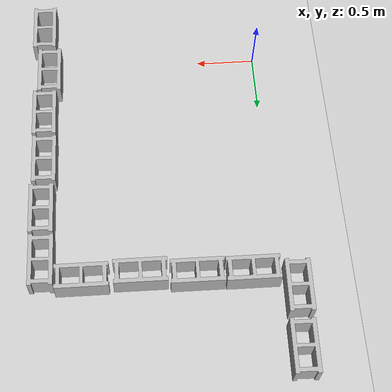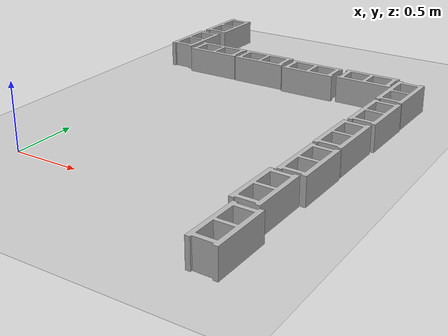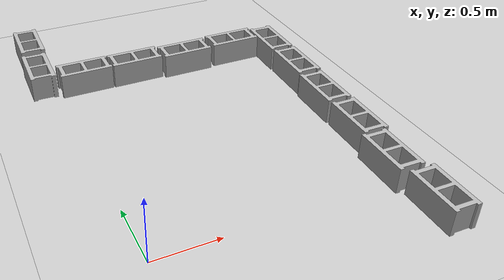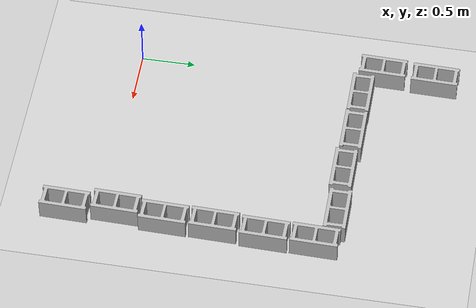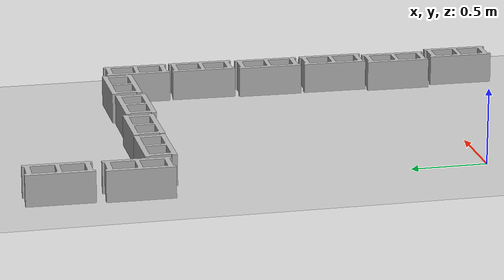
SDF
<sdf version="1.6">
 <world name="default">
  <model name="ground_plane">
   <static>1</static>
   <link name="link">
    <collision name="collision">
     <geometry><plane><normal>0 0 1</normal><size>100 100</size></plane></geometry>
     <surface>
      <contact><collide_bitmask>65535</collide_bitmask></contact>
      <friction><ode><mu>100</mu><mu2>50</mu2></ode></friction>
     </surface>
    </collision>
    <visual name="visual">
     <cast_shadows>0</cast_shadows>
     <geometry><plane><normal>0 0 1</normal><size>100 100</size></plane></geometry>
     <material>
      <script><uri>file://media/materials/scripts/gazebo.material</uri><name>Gazebo/Grey</name></script>
     </material>
    </visual>
   </link>
  </model>
  <model name="cinder_block">
   <link name="link">
    <inertial>
     <pose>0 0 0.1016 0 -0 0</pose>
     <mass>5</mass>
     <inertia>
      <ixx>0.028705</ixx>
      <ixy>0</ixy>
      <iyy>0.073708</iyy>
      <ixz>0</ixz>
      <iyz>0</iyz>
      <izz>0.06908</izz>
     </inertia>
    </inertial>
    <visual name="visual">
     <geometry><mesh><uri>model://cinder_block/meshes/cinder_block.dae</uri></mesh></geometry>
    </visual>
    <collision name="left">
     <pose>0 -0.08465 0.1016 0 -0 0</pose>
     <geometry><box><size>0.43495 0.0339 0.2032</size></box></geometry>
     <surface>
      <contact><ode><max_vel>0.1</max_vel><min_depth>0.001</min_depth></ode></contact>
      <friction><ode><mu>1</mu><mu2>1</mu2></ode></friction>
     </surface>
    </collision>
    <collision name="right">
     <pose>0 0.08465 0.1016 0 -0 0</pose>
     <geometry><box><size>0.43495 0.0339 0.2032</size></box></geometry>
     <surface>
      <contact><ode><max_vel>0.1</max_vel><min_depth>0.001</min_depth></ode></contact>
      <friction><ode><mu>1</mu><mu2>1</mu2></ode></friction>
     </surface>
    </collision>
    <collision name="front">
     <pose>0.18625 0 0.1016 0 -0 0</pose>
     <geometry><box><size>0.0339 0.1354 0.203</size></box></geometry>
     <surface>
      <contact><ode><max_vel>0.1</max_vel><min_depth>0.001</min_depth></ode></contact>
      <friction><ode><mu>1</mu><mu2>1</mu2></ode></friction>
     </surface>
    </collision>
    <collision name="middle">
     <pose>0 0 0.1016 0 -0 0</pose>
     <geometry><box><size>0.0339 0.1354 0.203</size></box></geometry>
     <surface>
      <contact><ode><max_vel>0.1</max_vel><min_depth>0.001</min_depth></ode></contact>
      <friction><ode><mu>1</mu><mu2>1</mu2></ode></friction>
     </surface>
    </collision>
    <collision name="back">
     <pose>-0.18625 0 0.1016 0 -0 0</pose>
     <geometry><box><size>0.0339 0.1354 0.203</size></box></geometry>
     <surface>
      <contact><ode><max_vel>0.1</max_vel><min_depth>0.001</min_depth></ode></contact>
      <friction><ode><mu>1</mu><mu2>1</mu2></ode></friction>
     </surface>
    </collision>
   </link>
   <pose>0.224611 2.1058 -6e-06 -1e-06 2.9e-05 0</pose>
  </model>
  <model name="cinder_block_0">
   <link name="link">
    <inertial>
     <pose>0 0 0.1016 0 -0 0</pose>
     <mass>5</mass>
     <inertia>
      <ixx>0.028705</ixx>
      <ixy>0</ixy>
      <iyy>0.073708</iyy>
      <ixz>0</ixz>
      <iyz>0</iyz>
      <izz>0.06908</izz>
     </inertia>
    </inertial>
    <visual name="visual">
     <geometry><mesh><uri>model://cinder_block/meshes/cinder_block.dae</uri></mesh></geometry>
    </visual>
    <collision name="left">
     <pose>0 -0.08465 0.1016 0 -0 0</pose>
     <geometry><box><size>0.43495 0.0339 0.2032</size></box></geometry>
     <surface>
      <contact><ode><max_vel>0.1</max_vel><min_depth>0.001</min_depth></ode></contact>
      <friction><ode><mu>1</mu><mu2>1</mu2></ode></friction>
     </surface>
    </collision>
    <collision name="right">
     <pose>0 0.08465 0.1016 0 -0 0</pose>
     <geometry><box><size>0.43495 0.0339 0.2032</size></box></geometry>
     <surface>
      <contact><ode><max_vel>0.1</max_vel><min_depth>0.001</min_depth></ode></contact>
      <friction><ode><mu>1</mu><mu2>1</mu2></ode></friction>
     </surface>
    </collision>
    <collision name="front">
     <pose>0.18625 0 0.1016 0 -0 0</pose>
     <geometry><box><size>0.0339 0.1354 0.203</size></box></geometry>
     <surface>
      <contact><ode><max_vel>0.1</max_vel><min_depth>0.001</min_depth></ode></contact>
      <friction><ode><mu>1</mu><mu2>1</mu2></ode></friction>
     </surface>
    </collision>
    <collision name="middle">
     <pose>0 0 0.1016 0 -0 0</pose>
     <geometry><box><size>0.0339 0.1354 0.203</size></box></geometry>
     <surface>
      <contact><ode><max_vel>0.1</max_vel><min_depth>0.001</min_depth></ode></contact>
      <friction><ode><mu>1</mu><mu2>1</mu2></ode></friction>
     </surface>
    </collision>
    <collision name="back">
     <pose>-0.18625 0 0.1016 0 -0 0</pose>
     <geometry><box><size>0.0339 0.1354 0.203</size></box></geometry>
     <surface>
      <contact><ode><max_vel>0.1</max_vel><min_depth>0.001</min_depth></ode></contact>
      <friction><ode><mu>1</mu><mu2>1</mu2></ode></friction>
     </surface>
    </collision>
   </link>
   <pose>0.669416 2.10145 -6e-06 -1e-06 2.9e-05 0</pose>
  </model>
  <model name="cinder_block_1">
   <link name="link">
    <inertial>
     <pose>0 0 0.1016 0 -0 0</pose>
     <mass>5</mass>
     <inertia>
      <ixx>0.028705</ixx>
      <ixy>0</ixy>
      <iyy>0.073708</iyy>
      <ixz>0</ixz>
      <iyz>0</iyz>
      <izz>0.06908</izz>
     </inertia>
    </inertial>
    <visual name="visual">
     <geometry><mesh><uri>model://cinder_block/meshes/cinder_block.dae</uri></mesh></geometry>
    </visual>
    <collision name="left">
     <pose>0 -0.08465 0.1016 0 -0 0</pose>
     <geometry><box><size>0.43495 0.0339 0.2032</size></box></geometry>
     <surface>
      <contact><ode><max_vel>0.1</max_vel><min_depth>0.001</min_depth></ode></contact>
      <friction><ode><mu>1</mu><mu2>1</mu2></ode></friction>
     </surface>
    </collision>
    <collision name="right">
     <pose>0 0.08465 0.1016 0 -0 0</pose>
     <geometry><box><size>0.43495 0.0339 0.2032</size></box></geometry>
     <surface>
      <contact><ode><max_vel>0.1</max_vel><min_depth>0.001</min_depth></ode></contact>
      <friction><ode><mu>1</mu><mu2>1</mu2></ode></friction>
     </surface>
    </collision>
    <collision name="front">
     <pose>0.18625 0 0.1016 0 -0 0</pose>
     <geometry><box><size>0.0339 0.1354 0.203</size></box></geometry>
     <surface>
      <contact><ode><max_vel>0.1</max_vel><min_depth>0.001</min_depth></ode></contact>
      <friction><ode><mu>1</mu><mu2>1</mu2></ode></friction>
     </surface>
    </collision>
    <collision name="middle">
     <pose>0 0 0.1016 0 -0 0</pose>
     <geometry><box><size>0.0339 0.1354 0.203</size></box></geometry>
     <surface>
      <contact><ode><max_vel>0.1</max_vel><min_depth>0.001</min_depth></ode></contact>
      <friction><ode><mu>1</mu><mu2>1</mu2></ode></friction>
     </surface>
    </collision>
    <collision name="back">
     <pose>-0.18625 0 0.1016 0 -0 0</pose>
     <geometry><box><size>0.0339 0.1354 0.203</size></box></geometry>
     <surface>
      <contact><ode><max_vel>0.1</max_vel><min_depth>0.001</min_depth></ode></contact>
      <friction><ode><mu>1</mu><mu2>1</mu2></ode></friction>
     </surface>
    </collision>
   </link>
   <pose>1.12399 2.07563 -6e-06 -1e-06 2.9e-05 0</pose>
  </model>
  <model name="cinder_block_2">
   <link name="link">
    <inertial>
     <pose>0 0 0.1016 0 -0 0</pose>
     <mass>5</mass>
     <inertia>
      <ixx>0.028705</ixx>
      <ixy>0</ixy>
      <iyy>0.073708</iyy>
      <ixz>0</ixz>
      <iyz>0</iyz>
      <izz>0.06908</izz>
     </inertia>
    </inertial>
    <visual name="visual">
     <geometry><mesh><uri>model://cinder_block/meshes/cinder_block.dae</uri></mesh></geometry>
    </visual>
    <collision name="left">
     <pose>0 -0.08465 0.1016 0 -0 0</pose>
     <geometry><box><size>0.43495 0.0339 0.2032</size></box></geometry>
     <surface>
      <contact><ode><max_vel>0.1</max_vel><min_depth>0.001</min_depth></ode></contact>
      <friction><ode><mu>1</mu><mu2>1</mu2></ode></friction>
     </surface>
    </collision>
    <collision name="right">
     <pose>0 0.08465 0.1016 0 -0 0</pose>
     <geometry><box><size>0.43495 0.0339 0.2032</size></box></geometry>
     <surface>
      <contact><ode><max_vel>0.1</max_vel><min_depth>0.001</min_depth></ode></contact>
      <friction><ode><mu>1</mu><mu2>1</mu2></ode></friction>
     </surface>
    </collision>
    <collision name="front">
     <pose>0.18625 0 0.1016 0 -0 0</pose>
     <geometry><box><size>0.0339 0.1354 0.203</size></box></geometry>
     <surface>
      <contact><ode><max_vel>0.1</max_vel><min_depth>0.001</min_depth></ode></contact>
      <friction><ode><mu>1</mu><mu2>1</mu2></ode></friction>
     </surface>
    </collision>
    <collision name="middle">
     <pose>0 0 0.1016 0 -0 0</pose>
     <geometry><box><size>0.0339 0.1354 0.203</size></box></geometry>
     <surface>
      <contact><ode><max_vel>0.1</max_vel><min_depth>0.001</min_depth></ode></contact>
      <friction><ode><mu>1</mu><mu2>1</mu2></ode></friction>
     </surface>
    </collision>
    <collision name="back">
     <pose>-0.18625 0 0.1016 0 -0 0</pose>
     <geometry><box><size>0.0339 0.1354 0.203</size></box></geometry>
     <surface>
      <contact><ode><max_vel>0.1</max_vel><min_depth>0.001</min_depth></ode></contact>
      <friction><ode><mu>1</mu><mu2>1</mu2></ode></friction>
     </surface>
    </collision>
   </link>
   <pose>1.59289 2.09049 -6e-06 -1e-06 2.9e-05 0</pose>
  </model>
  <model name="cinder_block_2_clone">
   <link name="link">
    <inertial>
     <pose>0 0 0.1016 0 -0 0</pose>
     <mass>5</mass>
     <inertia>
      <ixx>0.028705</ixx>
      <ixy>0</ixy>
      <iyy>0.073708</iyy>
      <ixz>0</ixz>
      <iyz>0</iyz>
      <izz>0.06908</izz>
     </inertia>
    </inertial>
    <visual name="visual">
     <geometry><mesh><uri>model://cinder_block/meshes/cinder_block.dae</uri></mesh></geometry>
    </visual>
    <collision name="left">
     <pose>0 -0.08465 0.1016 0 -0 0</pose>
     <geometry><box><size>0.43495 0.0339 0.2032</size></box></geometry>
     <surface>
      <contact><ode><max_vel>0.1</max_vel><min_depth>0.001</min_depth></ode></contact>
      <friction><ode><mu>1</mu><mu2>1</mu2></ode></friction>
     </surface>
    </collision>
    <collision name="right">
     <pose>0 0.08465 0.1016 0 -0 0</pose>
     <geometry><box><size>0.43495 0.0339 0.2032</size></box></geometry>
     <surface>
      <contact><ode><max_vel>0.1</max_vel><min_depth>0.001</min_depth></ode></contact>
      <friction><ode><mu>1</mu><mu2>1</mu2></ode></friction>
     </surface>
    </collision>
    <collision name="front">
     <pose>0.18625 0 0.1016 0 -0 0</pose>
     <geometry><box><size>0.0339 0.1354 0.203</size></box></geometry>
     <surface>
      <contact><ode><max_vel>0.1</max_vel><min_depth>0.001</min_depth></ode></contact>
      <friction><ode><mu>1</mu><mu2>1</mu2></ode></friction>
     </surface>
    </collision>
    <collision name="middle">
     <pose>0 0 0.1016 0 -0 0</pose>
     <geometry><box><size>0.0339 0.1354 0.203</size></box></geometry>
     <surface>
      <contact><ode><max_vel>0.1</max_vel><min_depth>0.001</min_depth></ode></contact>
      <friction><ode><mu>1</mu><mu2>1</mu2></ode></friction>
     </surface>
    </collision>
    <collision name="back">
     <pose>-0.18625 0 0.1016 0 -0 0</pose>
     <geometry><box><size>0.0339 0.1354 0.203</size></box></geometry>
     <surface>
      <contact><ode><max_vel>0.1</max_vel><min_depth>0.001</min_depth></ode></contact>
      <friction><ode><mu>1</mu><mu2>1</mu2></ode></friction>
     </surface>
    </collision>
   </link>
   <pose>1.91534 1.93639 -1.2e-05 6e-06 -0 -1.59062</pose>
  </model>
  <model name="cinder_block_2_clone_clone">
   <link name="link">
    <inertial>
     <pose>0 0 0.1016 0 -0 0</pose>
     <mass>5</mass>
     <inertia>
      <ixx>0.028705</ixx>
      <ixy>0</ixy>
      <iyy>0.073708</iyy>
      <ixz>0</ixz>
      <iyz>0</iyz>
      <izz>0.06908</izz>
     </inertia>
    </inertial>
    <visual name="visual">
     <geometry><mesh><uri>model://cinder_block/meshes/cinder_block.dae</uri></mesh></geometry>
    </visual>
    <collision name="left">
     <pose>0 -0.08465 0.1016 0 -0 0</pose>
     <geometry><box><size>0.43495 0.0339 0.2032</size></box></geometry>
     <surface>
      <contact><ode><max_vel>0.1</max_vel><min_depth>0.001</min_depth></ode></contact>
      <friction><ode><mu>1</mu><mu2>1</mu2></ode></friction>
     </surface>
    </collision>
    <collision name="right">
     <pose>0 0.08465 0.1016 0 -0 0</pose>
     <geometry><box><size>0.43495 0.0339 0.2032</size></box></geometry>
     <surface>
      <contact><ode><max_vel>0.1</max_vel><min_depth>0.001</min_depth></ode></contact>
      <friction><ode><mu>1</mu><mu2>1</mu2></ode></friction>
     </surface>
    </collision>
    <collision name="front">
     <pose>0.18625 0 0.1016 0 -0 0</pose>
     <geometry><box><size>0.0339 0.1354 0.203</size></box></geometry>
     <surface>
      <contact><ode><max_vel>0.1</max_vel><min_depth>0.001</min_depth></ode></contact>
      <friction><ode><mu>1</mu><mu2>1</mu2></ode></friction>
     </surface>
    </collision>
    <collision name="middle">
     <pose>0 0 0.1016 0 -0 0</pose>
     <geometry><box><size>0.0339 0.1354 0.203</size></box></geometry>
     <surface>
      <contact><ode><max_vel>0.1</max_vel><min_depth>0.001</min_depth></ode></contact>
      <friction><ode><mu>1</mu><mu2>1</mu2></ode></friction>
     </surface>
    </collision>
    <collision name="back">
     <pose>-0.18625 0 0.1016 0 -0 0</pose>
     <geometry><box><size>0.0339 0.1354 0.203</size></box></geometry>
     <surface>
      <contact><ode><max_vel>0.1</max_vel><min_depth>0.001</min_depth></ode></contact>
      <friction><ode><mu>1</mu><mu2>1</mu2></ode></friction>
     </surface>
    </collision>
   </link>
   <pose>1.91173 1.47972 -1.2e-05 6e-06 -0 -1.59062</pose>
  </model>
  <model name="cinder_block_2_clone_clone_0">
   <link name="link">
    <inertial>
     <pose>0 0 0.1016 0 -0 0</pose>
     <mass>5</mass>
     <inertia>
      <ixx>0.028705</ixx>
      <ixy>0</ixy>
      <iyy>0.073708</iyy>
      <ixz>0</ixz>
      <iyz>0</iyz>
      <izz>0.06908</izz>
     </inertia>
    </inertial>
    <visual name="visual">
     <geometry><mesh><uri>model://cinder_block/meshes/cinder_block.dae</uri></mesh></geometry>
    </visual>
    <collision name="left">
     <pose>0 -0.08465 0.1016 0 -0 0</pose>
     <geometry><box><size>0.43495 0.0339 0.2032</size></box></geometry>
     <surface>
      <contact><ode><max_vel>0.1</max_vel><min_depth>0.001</min_depth></ode></contact>
      <friction><ode><mu>1</mu><mu2>1</mu2></ode></friction>
     </surface>
    </collision>
    <collision name="right">
     <pose>0 0.08465 0.1016 0 -0 0</pose>
     <geometry><box><size>0.43495 0.0339 0.2032</size></box></geometry>
     <surface>
      <contact><ode><max_vel>0.1</max_vel><min_depth>0.001</min_depth></ode></contact>
      <friction><ode><mu>1</mu><mu2>1</mu2></ode></friction>
     </surface>
    </collision>
    <collision name="front">
     <pose>0.18625 0 0.1016 0 -0 0</pose>
     <geometry><box><size>0.0339 0.1354 0.203</size></box></geometry>
     <surface>
      <contact><ode><max_vel>0.1</max_vel><min_depth>0.001</min_depth></ode></contact>
      <friction><ode><mu>1</mu><mu2>1</mu2></ode></friction>
     </surface>
    </collision>
    <collision name="middle">
     <pose>0 0 0.1016 0 -0 0</pose>
     <geometry><box><size>0.0339 0.1354 0.203</size></box></geometry>
     <surface>
      <contact><ode><max_vel>0.1</max_vel><min_depth>0.001</min_depth></ode></contact>
      <friction><ode><mu>1</mu><mu2>1</mu2></ode></friction>
     </surface>
    </collision>
    <collision name="back">
     <pose>-0.18625 0 0.1016 0 -0 0</pose>
     <geometry><box><size>0.0339 0.1354 0.203</size></box></geometry>
     <surface>
      <contact><ode><max_vel>0.1</max_vel><min_depth>0.001</min_depth></ode></contact>
      <friction><ode><mu>1</mu><mu2>1</mu2></ode></friction>
     </surface>
    </collision>
   </link>
   <pose>1.8877 1.01666 -1.2e-05 5e-06 0 -1.59062</pose>
  </model>
  <model name="cinder_block_2_clone_clone_1">
   <link name="link">
    <inertial>
     <pose>0 0 0.1016 0 -0 0</pose>
     <mass>5</mass>
     <inertia>
      <ixx>0.028705</ixx>
      <ixy>0</ixy>
      <iyy>0.073708</iyy>
      <ixz>0</ixz>
      <iyz>0</iyz>
      <izz>0.06908</izz>
     </inertia>
    </inertial>
    <visual name="visual">
     <geometry><mesh><uri>model://cinder_block/meshes/cinder_block.dae</uri></mesh></geometry>
    </visual>
    <collision name="left">
     <pose>0 -0.08465 0.1016 0 -0 0</pose>
     <geometry><box><size>0.43495 0.0339 0.2032</size></box></geometry>
     <surface>
      <contact><ode><max_vel>0.1</max_vel><min_depth>0.001</min_depth></ode></contact>
      <friction><ode><mu>1</mu><mu2>1</mu2></ode></friction>
     </surface>
    </collision>
    <collision name="right">
     <pose>0 0.08465 0.1016 0 -0 0</pose>
     <geometry><box><size>0.43495 0.0339 0.2032</size></box></geometry>
     <surface>
      <contact><ode><max_vel>0.1</max_vel><min_depth>0.001</min_depth></ode></contact>
      <friction><ode><mu>1</mu><mu2>1</mu2></ode></friction>
     </surface>
    </collision>
    <collision name="front">
     <pose>0.18625 0 0.1016 0 -0 0</pose>
     <geometry><box><size>0.0339 0.1354 0.203</size></box></geometry>
     <surface>
      <contact><ode><max_vel>0.1</max_vel><min_depth>0.001</min_depth></ode></contact>
      <friction><ode><mu>1</mu><mu2>1</mu2></ode></friction>
     </surface>
    </collision>
    <collision name="middle">
     <pose>0 0 0.1016 0 -0 0</pose>
     <geometry><box><size>0.0339 0.1354 0.203</size></box></geometry>
     <surface>
      <contact><ode><max_vel>0.1</max_vel><min_depth>0.001</min_depth></ode></contact>
      <friction><ode><mu>1</mu><mu2>1</mu2></ode></friction>
     </surface>
    </collision>
    <collision name="back">
     <pose>-0.18625 0 0.1016 0 -0 0</pose>
     <geometry><box><size>0.0339 0.1354 0.203</size></box></geometry>
     <surface>
      <contact><ode><max_vel>0.1</max_vel><min_depth>0.001</min_depth></ode></contact>
      <friction><ode><mu>1</mu><mu2>1</mu2></ode></friction>
     </surface>
    </collision>
   </link>
   <pose>1.88472 0.556425 -1.2e-05 5e-06 0 -1.59062</pose>
  </model>
  <model name="cinder_block_2_clone_clone_2">
   <link name="link">
    <inertial>
     <pose>0 0 0.1016 0 -0 0</pose>
     <mass>5</mass>
     <inertia>
      <ixx>0.028705</ixx>
      <ixy>0</ixy>
      <iyy>0.073708</iyy>
      <ixz>0</ixz>
      <iyz>0</iyz>
      <izz>0.06908</izz>
     </inertia>
    </inertial>
    <visual name="visual">
     <geometry><mesh><uri>model://cinder_block/meshes/cinder_block.dae</uri></mesh></geometry>
    </visual>
    <collision name="left">
     <pose>0 -0.08465 0.1016 0 -0 0</pose>
     <geometry><box><size>0.43495 0.0339 0.2032</size></box></geometry>
     <surface>
      <contact><ode><max_vel>0.1</max_vel><min_depth>0.001</min_depth></ode></contact>
      <friction><ode><mu>1</mu><mu2>1</mu2></ode></friction>
     </surface>
    </collision>
    <collision name="right">
     <pose>0 0.08465 0.1016 0 -0 0</pose>
     <geometry><box><size>0.43495 0.0339 0.2032</size></box></geometry>
     <surface>
      <contact><ode><max_vel>0.1</max_vel><min_depth>0.001</min_depth></ode></contact>
      <friction><ode><mu>1</mu><mu2>1</mu2></ode></friction>
     </surface>
    </collision>
    <collision name="front">
     <pose>0.18625 0 0.1016 0 -0 0</pose>
     <geometry><box><size>0.0339 0.1354 0.203</size></box></geometry>
     <surface>
      <contact><ode><max_vel>0.1</max_vel><min_depth>0.001</min_depth></ode></contact>
      <friction><ode><mu>1</mu><mu2>1</mu2></ode></friction>
     </surface>
    </collision>
    <collision name="middle">
     <pose>0 0 0.1016 0 -0 0</pose>
     <geometry><box><size>0.0339 0.1354 0.203</size></box></geometry>
     <surface>
      <contact><ode><max_vel>0.1</max_vel><min_depth>0.001</min_depth></ode></contact>
      <friction><ode><mu>1</mu><mu2>1</mu2></ode></friction>
     </surface>
    </collision>
    <collision name="back">
     <pose>-0.18625 0 0.1016 0 -0 0</pose>
     <geometry><box><size>0.0339 0.1354 0.203</size></box></geometry>
     <surface>
      <contact><ode><max_vel>0.1</max_vel><min_depth>0.001</min_depth></ode></contact>
      <friction><ode><mu>1</mu><mu2>1</mu2></ode></friction>
     </surface>
    </collision>
   </link>
   <pose>1.83849 0.113223 -1.2e-05 5e-06 0 -1.59062</pose>
  </model>
  <model name="cinder_block_2_clone_clone_3">
   <link name="link">
    <inertial>
     <pose>0 0 0.1016 0 -0 0</pose>
     <mass>5</mass>
     <inertia>
      <ixx>0.028705</ixx>
      <ixy>0</ixy>
      <iyy>0.073708</iyy>
      <ixz>0</ixz>
      <iyz>0</iyz>
      <izz>0.06908</izz>
     </inertia>
    </inertial>
    <visual name="visual">
     <geometry><mesh><uri>model://cinder_block/meshes/cinder_block.dae</uri></mesh></geometry>
    </visual>
    <collision name="left">
     <pose>0 -0.08465 0.1016 0 -0 0</pose>
     <geometry><box><size>0.43495 0.0339 0.2032</size></box></geometry>
     <surface>
      <contact><ode><max_vel>0.1</max_vel><min_depth>0.001</min_depth></ode></contact>
      <friction><ode><mu>1</mu><mu2>1</mu2></ode></friction>
     </surface>
    </collision>
    <collision name="right">
     <pose>0 0.08465 0.1016 0 -0 0</pose>
     <geometry><box><size>0.43495 0.0339 0.2032</size></box></geometry>
     <surface>
      <contact><ode><max_vel>0.1</max_vel><min_depth>0.001</min_depth></ode></contact>
      <friction><ode><mu>1</mu><mu2>1</mu2></ode></friction>
     </surface>
    </collision>
    <collision name="front">
     <pose>0.18625 0 0.1016 0 -0 0</pose>
     <geometry><box><size>0.0339 0.1354 0.203</size></box></geometry>
     <surface>
      <contact><ode><max_vel>0.1</max_vel><min_depth>0.001</min_depth></ode></contact>
      <friction><ode><mu>1</mu><mu2>1</mu2></ode></friction>
     </surface>
    </collision>
    <collision name="middle">
     <pose>0 0 0.1016 0 -0 0</pose>
     <geometry><box><size>0.0339 0.1354 0.203</size></box></geometry>
     <surface>
      <contact><ode><max_vel>0.1</max_vel><min_depth>0.001</min_depth></ode></contact>
      <friction><ode><mu>1</mu><mu2>1</mu2></ode></friction>
     </surface>
    </collision>
    <collision name="back">
     <pose>-0.18625 0 0.1016 0 -0 0</pose>
     <geometry><box><size>0.0339 0.1354 0.203</size></box></geometry>
     <surface>
      <contact><ode><max_vel>0.1</max_vel><min_depth>0.001</min_depth></ode></contact>
      <friction><ode><mu>1</mu><mu2>1</mu2></ode></friction>
     </surface>
    </collision>
   </link>
   <pose>1.87798 -0.351042 -1.2e-05 5e-06 0 -1.59062</pose>
  </model>
  <model name="cinder_block_2_clone_clone_6_clone_12">
   <link name="link">
    <inertial>
     <pose>0 0 0.1016 0 -0 0</pose>
     <mass>5</mass>
     <inertia>
      <ixx>0.028705</ixx>
      <ixy>0</ixy>
      <iyy>0.073708</iyy>
      <ixz>0</ixz>
      <iyz>0</iyz>
      <izz>0.06908</izz>
     </inertia>
    </inertial>
    <visual name="visual">
     <geometry><mesh><uri>model://cinder_block/meshes/cinder_block.dae</uri></mesh></geometry>
    </visual>
    <collision name="left">
     <pose>0 -0.08465 0.1016 0 -0 0</pose>
     <geometry><box><size>0.43495 0.0339 0.2032</size></box></geometry>
     <surface>
      <contact><ode><max_vel>0.1</max_vel><min_depth>0.001</min_depth></ode></contact>
      <friction><ode><mu>1</mu><mu2>1</mu2></ode></friction>
     </surface>
    </collision>
    <collision name="right">
     <pose>0 0.08465 0.1016 0 -0 0</pose>
     <geometry><box><size>0.43495 0.0339 0.2032</size></box></geometry>
     <surface>
      <contact><ode><max_vel>0.1</max_vel><min_depth>0.001</min_depth></ode></contact>
      <friction><ode><mu>1</mu><mu2>1</mu2></ode></friction>
     </surface>
    </collision>
    <collision name="front">
     <pose>0.18625 0 0.1016 0 -0 0</pose>
     <geometry><box><size>0.0339 0.1354 0.203</size></box></geometry>
     <surface>
      <contact><ode><max_vel>0.1</max_vel><min_depth>0.001</min_depth></ode></contact>
      <friction><ode><mu>1</mu><mu2>1</mu2></ode></friction>
     </surface>
    </collision>
    <collision name="middle">
     <pose>0 0 0.1016 0 -0 0</pose>
     <geometry><box><size>0.0339 0.1354 0.203</size></box></geometry>
     <surface>
      <contact><ode><max_vel>0.1</max_vel><min_depth>0.001</min_depth></ode></contact>
      <friction><ode><mu>1</mu><mu2>1</mu2></ode></friction>
     </surface>
    </collision>
    <collision name="back">
     <pose>-0.18625 0 0.1016 0 -0 0</pose>
     <geometry><box><size>0.0339 0.1354 0.203</size></box></geometry>
     <surface>
      <contact><ode><max_vel>0.1</max_vel><min_depth>0.001</min_depth></ode></contact>
      <friction><ode><mu>1</mu><mu2>1</mu2></ode></friction>
     </surface>
    </collision>
   </link>
   <pose>-0.122844 2.26999 -1.2e-05 4e-06 -0 -1.59062</pose>
  </model>
  <model name="cinder_block_2_clone_clone_6_clone_13">
   <link name="link">
    <inertial>
     <pose>0 0 0.1016 0 -0 0</pose>
     <mass>5</mass>
     <inertia>
      <ixx>0.028705</ixx>
      <ixy>0</ixy>
      <iyy>0.073708</iyy>
      <ixz>0</ixz>
      <iyz>0</iyz>
      <izz>0.06908</izz>
     </inertia>
    </inertial>
    <visual name="visual">
     <geometry><mesh><uri>model://cinder_block/meshes/cinder_block.dae</uri></mesh></geometry>
    </visual>
    <collision name="left">
     <pose>0 -0.08465 0.1016 0 -0 0</pose>
     <geometry><box><size>0.43495 0.0339 0.2032</size></box></geometry>
     <surface>
      <contact><ode><max_vel>0.1</max_vel><min_depth>0.001</min_depth></ode></contact>
      <friction><ode><mu>1</mu><mu2>1</mu2></ode></friction>
     </surface>
    </collision>
    <collision name="right">
     <pose>0 0.08465 0.1016 0 -0 0</pose>
     <geometry><box><size>0.43495 0.0339 0.2032</size></box></geometry>
     <surface>
      <contact><ode><max_vel>0.1</max_vel><min_depth>0.001</min_depth></ode></contact>
      <friction><ode><mu>1</mu><mu2>1</mu2></ode></friction>
     </surface>
    </collision>
    <collision name="front">
     <pose>0.18625 0 0.1016 0 -0 0</pose>
     <geometry><box><size>0.0339 0.1354 0.203</size></box></geometry>
     <surface>
      <contact><ode><max_vel>0.1</max_vel><min_depth>0.001</min_depth></ode></contact>
      <friction><ode><mu>1</mu><mu2>1</mu2></ode></friction>
     </surface>
    </collision>
    <collision name="middle">
     <pose>0 0 0.1016 0 -0 0</pose>
     <geometry><box><size>0.0339 0.1354 0.203</size></box></geometry>
     <surface>
      <contact><ode><max_vel>0.1</max_vel><min_depth>0.001</min_depth></ode></contact>
      <friction><ode><mu>1</mu><mu2>1</mu2></ode></friction>
     </surface>
    </collision>
    <collision name="back">
     <pose>-0.18625 0 0.1016 0 -0 0</pose>
     <geometry><box><size>0.0339 0.1354 0.203</size></box></geometry>
     <surface>
      <contact><ode><max_vel>0.1</max_vel><min_depth>0.001</min_depth></ode></contact>
      <friction><ode><mu>1</mu><mu2>1</mu2></ode></friction>
     </surface>
    </collision>
   </link>
   <pose>-0.10101 2.76305 -1.2e-05 4e-06 -0 -1.59062</pose>
  </model>
 </world>
</sdf>
